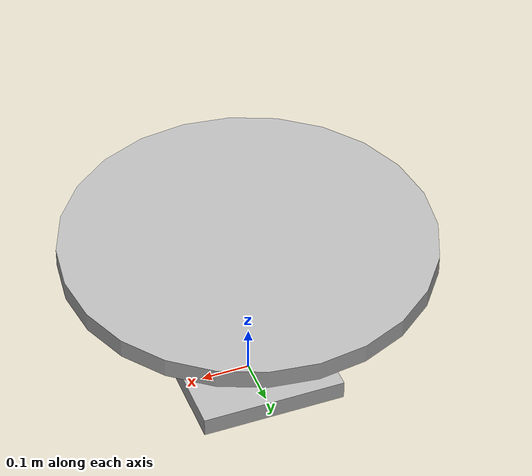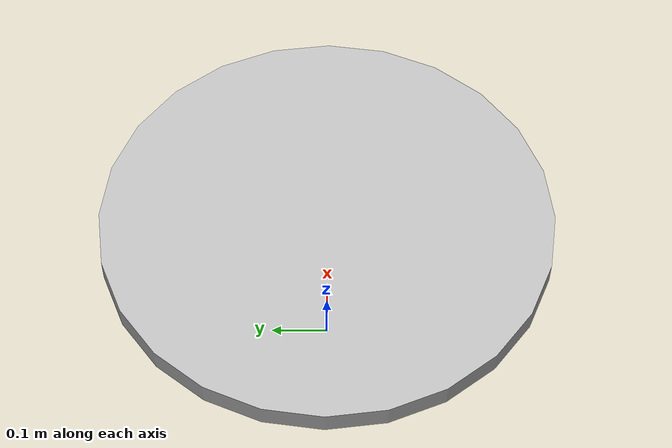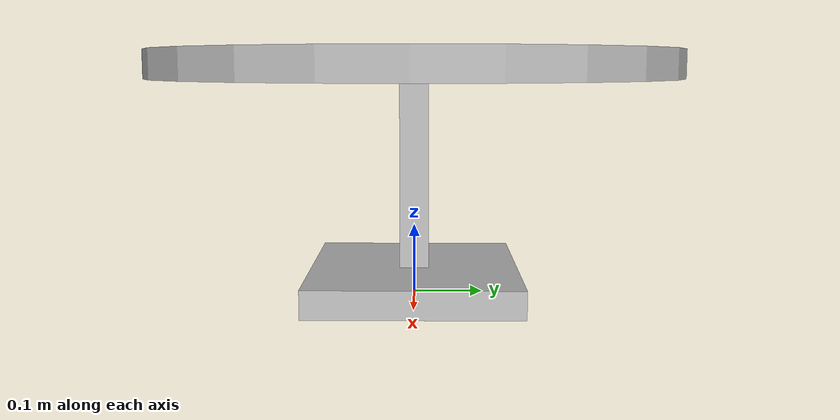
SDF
<?xml version="1.0" ?>
<sdf version="1.4">
  <model name="cafe_table">
    <static>true</static>
    <link name="link">
      <collision name="surface">
        <pose>0 0 0.335 0 0 0</pose>
        <geometry>
          <cylinder>
            <radius>0.375</radius>
            <length>0.04</length>
          </cylinder>
        </geometry>
      </collision>

      <collision name="column">
        <pose>0 0 0.1775 0 0 0</pose>
        <geometry>
          <box>
            <size>0.042 0.042 0.275</size>
          </box>
        </geometry>
      </collision>

      <collision name="base">
        <pose>0 0 0.02 0 0 0</pose>
        <geometry>
          <box>
            <size>0.30 0.30 0.04</size>
          </box>
        </geometry>
      </collision>

      <visual name="surface">
        <pose>0 0 0.335 0 0 0</pose>
        <geometry>
          <cylinder>
            <radius>0.375</radius>
            <length>0.04</length>
          </cylinder>
        </geometry>
      </visual>

      <visual name="column">
        <pose>0 0 0.1775 0 0 0</pose>
        <geometry>
         <box>
           <size>0.042 0.042 0.275</size>
         </box>
        </geometry>
      </visual>

      <visual name="base">
        <pose>0 0 0.02 0 0 0</pose>
        <geometry>
         <box>
           <size>0.30 0.30 0.04</size>
         </box>
        </geometry>
      </visual>
    </link>
  </model>
</sdf>
